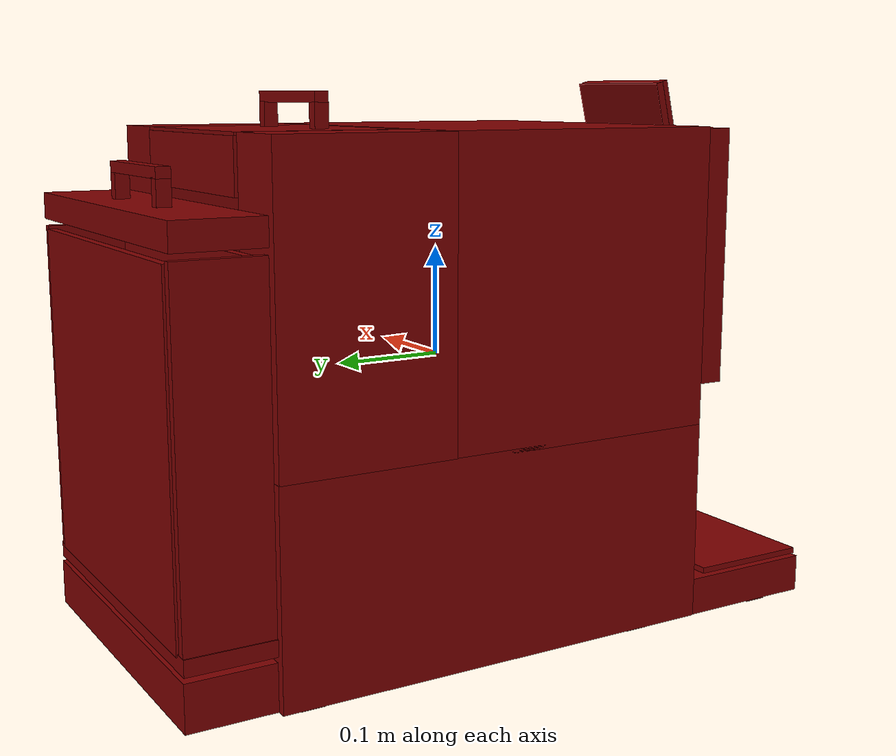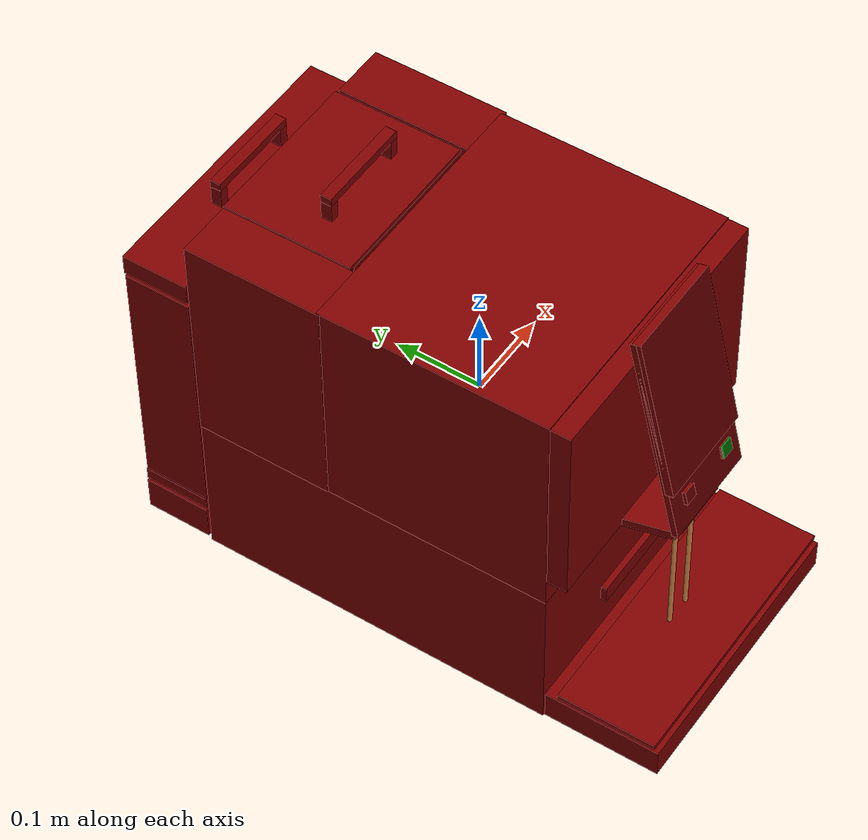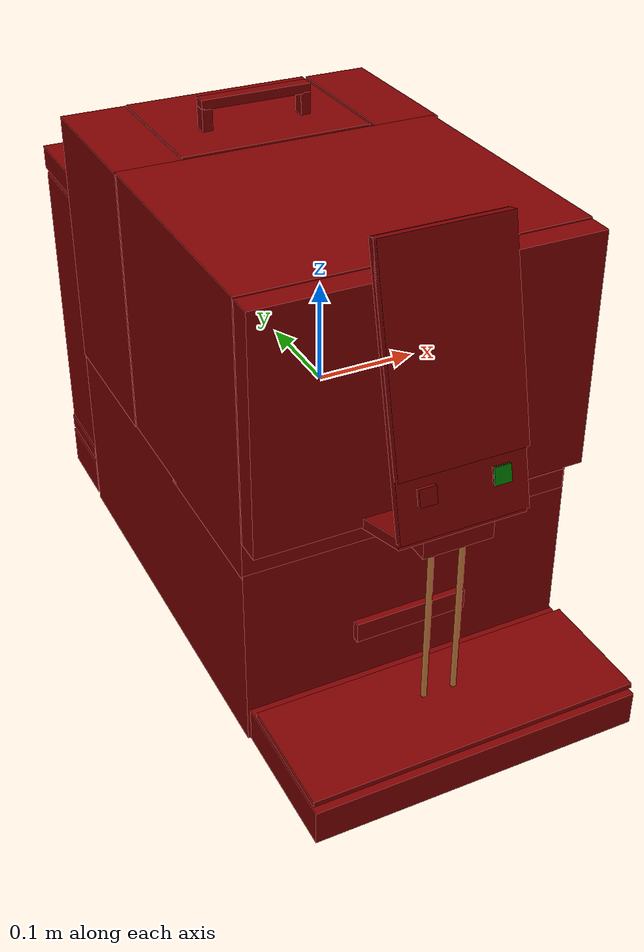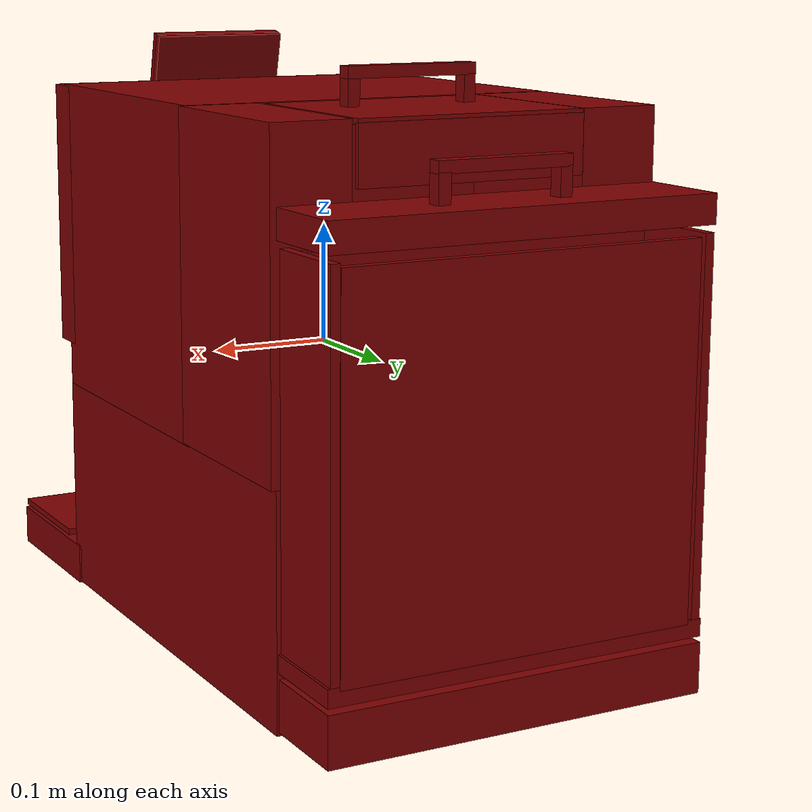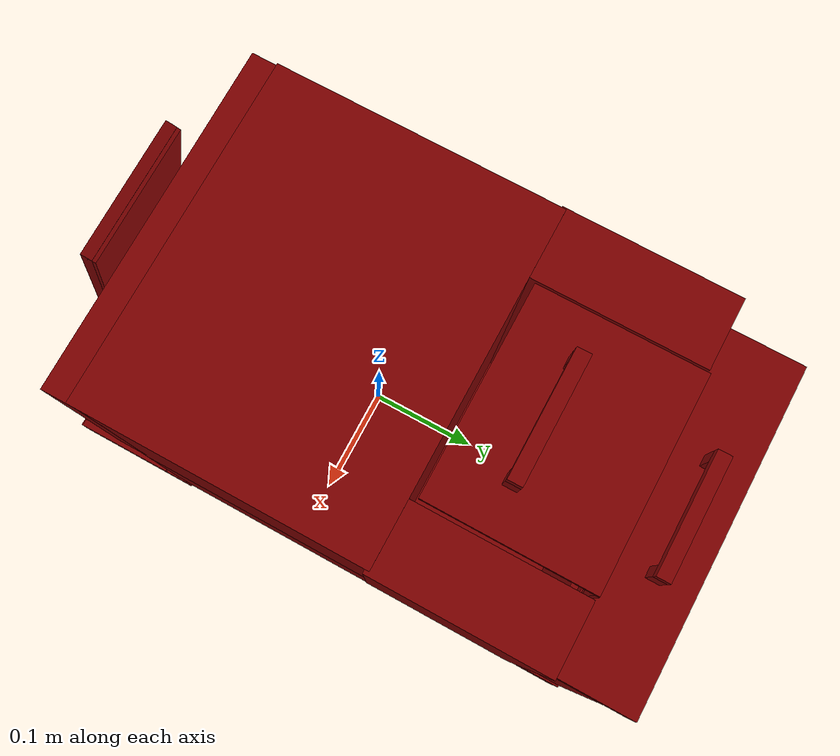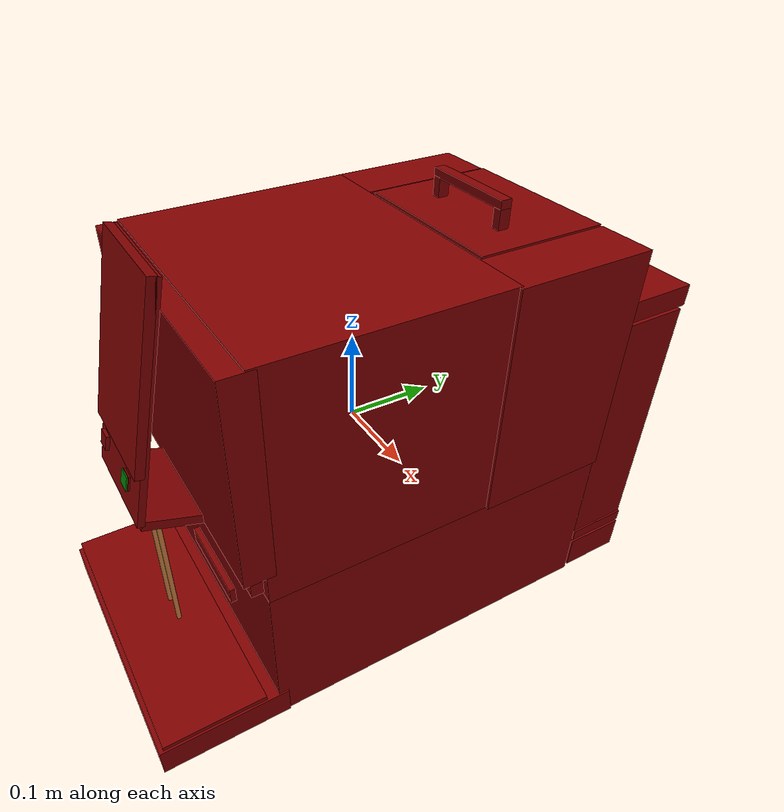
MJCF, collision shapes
<?xml version='1.0' encoding='UTF-8'?>
<mujoco model="model">
  <compiler angle="radian"/>
  <asset>
    <mesh file="visuals/Body001.obj" name="Body001_vis"/>
    <mesh file="visuals/Button001.obj" name="Button001_vis"/>
    <mesh file="visuals/Button002.obj" name="Button002_vis"/>
    <mesh file="visuals/Container001_Clear.obj" name="Container001_Clear_vis"/>
    <mesh file="visuals/Lid001.obj" name="Lid001_vis"/>
    <mesh file="visuals/Lid002.obj" name="Lid002_vis"/>
    <mesh file="visuals/Lid003.obj" name="Lid003_vis"/>
    <texture file="visuals/T_BC001.png" name="Body001_material" type="2d"/>
    <material name="Body001_material" rgba="1 1 1 1.0" texture="Body001_material" shininess="0.4472135901451111" specular="0.3103448502657381"/>
    <texture file="visuals/T_BC001.png" name="Button001_material" type="2d"/>
    <material name="Button001_material" rgba="1 1 1 1.0" texture="Button001_material" shininess="0.4472135901451111" specular="0.3103448502657381"/>
    <texture file="visuals/T_BC001.png" name="Button002_material" type="2d"/>
    <material name="Button002_material" rgba="1 1 1 1.0" texture="Button002_material" shininess="0.4472135901451111" specular="0.3103448502657381"/>
    <texture file="visuals/T_BC001.png" name="Container001_Clear_material" type="2d"/>
    <material name="Container001_Clear_material" rgba="1 1 1 0.20114943385124207" texture="Container001_Clear_material" shininess="0.4472135901451111" specular="0.3103448502657381"/>
    <texture file="visuals/T_BC001.png" name="Lid003_material" type="2d"/>
    <material name="Lid003_material" rgba="1 1 1 1.0" texture="Lid003_material" shininess="0.4472135901451111" specular="0.3103448502657381"/>
    <texture file="visuals/T_BC001.png" name="Lid001_material" type="2d"/>
    <material name="Lid001_material" rgba="1 1 1 1.0" texture="Lid001_material" shininess="0.4472135901451111" specular="0.3103448502657381"/>
    <texture file="visuals/T_BC001.png" name="Lid002_material" type="2d"/>
    <material name="Lid002_material" rgba="1 1 1 1.0" texture="Lid002_material" shininess="0.4472135901451111" specular="0.3103448502657381"/>
  </asset>
  <default>
    <default class="visual">
      <geom conaffinity="0" contype="0" group="1" type="mesh"/>
    </default>
    <default class="collision">
      <geom group="0" rgba="0.5 0 0 0.5"/>
    </default>
    <default class="spawn">
      <geom group="0" rgba="1 1 1 0.5" contype="0" conaffinity="0"/>
      <site group="0" rgba="1 1 1 0.5"/>
    </default>
    <default class="region">
      <geom group="1" conaffinity="0" contype="0" rgba="0 1 0 0"/>
    </default>
  </default>
  <worldbody>
    <body>
      <body name="object">
        <geom class="collision" type="box" pos="0.033754557371139526 -0.2671512961387634 0.04330391436815262" size="0.008060061372816563 0.008060061372816563 0.000699829775840044" quat="0.7826515436172485 0.6224600672721863 -1.3821389971906101e-16 -2.9949149626217763e-24" name="start_button" rgba="0.0 0.5 0 0.5"/>
        <site type="cylinder" rgba="0.8 0.5 0.25 1" size="0.0027536980342119932 0.08836809545755386" pos="0.015095533803105354 -0.24314254522323608 -0.11565243452787399" name="coffee_liquid_right"/>
        <site type="cylinder" rgba="0.8 0.5 0.25 1" size="0.0027536980342119932 0.08836809545755386" pos="-0.015452437102794647 -0.243136927485466 -0.11565243452787399" name="coffee_liquid_left"/>
        <site rgba="0 0 0 0" size="0.009999999776482582 0.009999999776482582" pos="-0.0006867935881018639 -0.24290379881858826 -0.19208770990371704" name="receptacle_place_site"/>
        <geom mesh="Body001_vis" type="mesh" solimp="0.998 0.998 0.001" solref="0.001 1" density="100" friction="0.95 0.3 0.1" class="visual" material="Body001_material"/>
        <geom class="collision" type="box" pos="-0.0013004596112295985 0.025184381753206253 -0.14707474410533905" size="0.1611114889383316 0.20876915752887726 0.09353115409612656" quat="1.0 0.0 0.0 0.0"/>
        <geom class="collision" type="box" pos="0.0009507137583568692 -0.24509277939796448 -0.224291130900383" size="0.1604650616645813 0.07275550812482834 0.01727115549147129" quat="1.0 0.0 0.0 0.0"/>
        <geom class="collision" type="box" pos="-0.0008559385314583778 -0.19018328189849854 0.09453745186328888" size="0.16067305207252502 0.016490131616592407 0.11428403109312057" quat="1.0 0.0 0.0 0.0"/>
        <geom class="collision" type="box" pos="0.10929493606090546 -0.1858922690153122 -0.03978230804204941" size="0.03931257873773575 0.010778128169476986 0.01006204541772604" quat="1.0 0.0 0.0 0.0"/>
        <geom class="collision" type="box" pos="-0.00016388390213251114 -0.1761995553970337 -0.1517229974269867" size="0.05573558807373047 0.014241812750697136 0.010061873123049736" quat="1.0 0.0 0.0 0.0"/>
        <geom class="collision" type="box" pos="-0.00021263858070597053 -0.2341383546590805 -0.00712016224861145" size="0.060628391802310944 0.033393725752830505 0.005183053202927113" quat="7.814456353116839e-07 1.2097139290290215e-07 0.15298236906528473 0.9882289171218872"/>
        <geom class="collision" type="box" pos="-0.00021553396072704345 -0.23795868456363678 0.1258302479982376" size="0.06091903895139694 0.12619689106941223 0.003696313826367259" quat="-4.119932555113337e-07 -6.418663929252943e-07 0.6208177208900452 -0.783954918384552"/>
        <geom class="collision" type="box" pos="5.3785042837262154e-05 -0.24348749220371246 -0.015416172333061695" size="0.0338912159204483 0.01709156483411789 0.009638278745114803" quat="1.0 0.0 0.0 0.0"/>
        <geom class="collision" type="box" pos="-9.414926171302795e-05 -0.18169912695884705 -0.03162327781319618" size="0.03677181899547577 0.005802751053124666 0.010452591814100742" quat="1.0 0.0 0.0 0.0"/>
        <geom class="collision" type="cylinder" pos="-0.01585986278951168 -0.24306541681289673 -0.026756256818771362" size="0.005605975165963173 0.002548620104789734" quat="1.0 0.0 0.0 0.0"/>
        <geom class="collision" type="cylinder" pos="0.014895429834723473 -0.24302464723587036 -0.026457564905285835" size="0.005609521642327309 0.002782014897093177" quat="1.0 0.0 0.0 0.0"/>
        <geom class="collision" type="box" pos="0.1310042142868042 0.1546313315629959 0.078236423432827" size="0.032547321170568466 0.0791948214173317 0.1319090873003006" quat="1.0 0.0 0.0 0.0"/>
        <geom class="collision" type="box" pos="-0.0013004596112295985 -0.052136532962322235 0.07679121196269989" size="0.1611114889383316 0.13138803839683533 0.13366743922233582" quat="1.0 0.0 0.0 0.0"/>
        <geom class="collision" type="box" pos="-0.1308763325214386 0.1546313315629959 0.078236423432827" size="0.03254740685224533 0.0791950449347496 0.1319095343351364" quat="1.0 0.0 0.0 0.0"/>
        <geom class="collision" type="box" pos="-0.0013004596112295985 0.22730231285095215 0.04608653485774994" size="0.16111163794994354 0.0031860563904047012 0.09584924578666687" quat="1.0 0.0 0.0 0.0"/>
        <geom class="collision" type="box" pos="-0.13053935766220093 -0.13447493314743042 -0.24615895748138428" size="0.010321017354726791 0.01090722344815731 0.005924145225435495" quat="1.0 0.0 0.0 0.0"/>
        <geom class="collision" type="box" pos="-0.13053935766220093 -0.2837553322315216 -0.24615895748138428" size="0.010321017354726791 0.010907227173447609 0.005924145225435495" quat="1.0 0.0 0.0 0.0"/>
        <geom class="collision" type="box" pos="-0.13053935766220093 0.19743475317955017 -0.24615895748138428" size="0.010321017354726791 0.010907229967415333 0.005924145225435495" quat="1.0 0.0 0.0 0.0"/>
        <geom class="collision" type="box" pos="0.12791037559509277 -0.13447493314743042 -0.24615895748138428" size="0.010321017354726791 0.010907233692705631 0.005924145225435495" quat="1.0 0.0 0.0 0.0"/>
        <geom class="collision" type="box" pos="0.12791037559509277 -0.2837553322315216 -0.24615895748138428" size="0.010321017354726791 0.010907236486673355 0.005924145225435495" quat="1.0 0.0 0.0 0.0"/>
        <geom class="collision" type="box" pos="0.12791037559509277 0.19743475317955017 -0.24615895748138428" size="0.010321017354726791 0.010907240211963654 0.005924145225435495" quat="1.0 0.0 0.0 0.0"/>
        <geom class="collision" type="box" pos="-0.0013004596112295985 0.2761686146259308 -0.2157154232263565" size="0.1611108034849167 0.03865629807114601 0.02060461789369583" quat="1.0 0.0 0.0 0.0"/>
        <geom class="collision" type="box" pos="-0.00021549036318901926 -0.2355841100215912 0.1546584516763687" size="0.06091903895139694 0.09800583124160767 0.004807164426892996" quat="-4.119932555113337e-07 -6.418663929252943e-07 0.6208177208900452 -0.783954918384552"/>
        <body name="Button001">
          <joint axis="-1.1249694381029354e-17 0.9743387699127197 -0.22508692741394043" pos="-0.035376351326704025 -0.2658103108406067 0.04280857741832733" limited="true" name="Button001_joint" range="0.0 0.001" type="slide" damping="1" frictionloss="1" armature=".01" stiffness="0.2" springref="-0.1"/>
          <geom mesh="Button001_vis" type="mesh" solimp="0.998 0.998 0.001" solref="0.001 1" density="100" friction="0.95 0.3 0.1" class="visual" material="Button001_material"/>
          <geom class="collision" type="box" pos="-0.0357784628868103 -0.2657676339149475 0.04298426955938339" size="0.008060061372816563 0.008060061372816563 0.002063905354589224" quat="0.7826515436172485 0.6224600672721863 -1.3821391295395081e-16 -9.234127288617621e-24"/>
        </body>
        <body name="Button002">
          <joint axis="-1.1249694381029354e-17 0.9743387699127197 -0.22508692741394043" pos="0.03360137715935707 -0.2658103108406067 0.04280857741832733" limited="true" name="Button002_joint" range="0.0 0.001" type="slide" damping="1" frictionloss="1" armature=".01" stiffness="0.2" springref="-0.1"/>
          <geom mesh="Button002_vis" type="mesh" solimp="0.998 0.998 0.001" solref="0.001 1" density="100" friction="0.95 0.3 0.1" class="visual" material="Button002_material"/>
          <geom class="collision" type="box" pos="0.033754557371139526 -0.264991819858551 0.04280504211783409" size="0.008060061372816563 0.008060061372816563 0.0008430741145275533" quat="0.7826515436172485 0.6224600672721863 -1.3821389971906101e-16 -2.9949149626217763e-24"/>
        </body>
        <body name="Container001_Clear">
          <joint axis="0.0 0.0 1.0" pos="-0.00032114743953570724 0.27560165524482727 -0.04986231029033661" limited="true" name="Container001_Clear_joint" range="0.0 0.1" type="slide" damping="1" frictionloss="1" armature=".01" stiffness="0.05"/>
          <geom mesh="Container001_Clear_vis" type="mesh" solimp="0.998 0.998 0.001" solref="0.001 1" density="100" friction="0.95 0.3 0.1" class="visual" material="Container001_Clear_material"/>
          <geom class="collision" type="box" pos="-0.0013004596112295985 0.2755599915981293 -0.18342097103595734" size="0.16111087799072266 0.03865629807114601 0.007220471277832985" quat="1.0 0.0 0.0 0.0"/>
          <geom class="collision" type="box" pos="0.15382120013237 0.27556002140045166 -0.027580630034208298" size="0.003839734476059675 0.03865622356534004 0.14986684918403625" quat="1.0 0.0 0.0 0.0"/>
          <geom class="collision" type="box" pos="-0.15730229020118713 0.27556002140045166 -0.027580630034208298" size="0.003839734476059675 0.03865623474121094 0.14986690878868103" quat="1.0 0.0 0.0 0.0"/>
          <geom class="collision" type="box" pos="0.00044015422463417053 0.3111792802810669 -0.02976139262318611" size="0.14986717700958252 0.003839521436020732 0.14925602078437805" quat="1.0 0.0 0.0 0.0"/>
          <geom class="collision" type="box" pos="0.0004401679616421461 0.2406676709651947 -0.02976139821112156" size="0.14986717700958252 0.003839521436020732 0.1492559313774109" quat="1.0 0.0 0.0 0.0"/>
          <body name="Lid003">
            <joint axis="0.0 0.0 1.0" pos="-0.00032111763721331954 0.27560165524482727 0.15462897717952728" limited="true" name="Lid003_joint" range="0.0 0.1" type="slide" damping="1" frictionloss="1" armature=".01" stiffness="0.05"/>
            <geom mesh="Lid003_vis" type="mesh" solimp="0.998 0.998 0.001" solref="0.001 1" density="100" friction="0.95 0.3 0.1" class="visual" material="Lid003_material"/>
            <geom class="collision" type="box" pos="-0.0013004596112295985 0.2755599915981293 0.13977396488189697" size="0.16111069917678833 0.03865629807114601 0.011780411936342716" quat="1.0 0.0 0.0 0.0"/>
            <geom class="collision" type="box" pos="0.0011533333454281092 0.27777424454689026 0.17851346731185913" size="0.056033920496702194 0.006402964703738689 0.0047754086554050446" quat="1.0 0.0 0.0 0.0"/>
            <geom class="collision" type="box" pos="-0.0497867725789547 0.27777424454689026 0.16255277395248413" size="0.005093819461762905 0.006402964703738689 0.012112844735383987" quat="1.0 0.0 0.0 0.0"/>
            <geom class="collision" type="box" pos="0.0520402230322361 0.27777424454689026 0.16255277395248413" size="0.005093819461762905 0.006402964703738689 0.012112844735383987" quat="1.0 0.0 0.0 0.0"/>
          </body>
        </body>
        <body name="Lid001">
          <joint axis="-1.0 0.0 0.0" pos="-0.0008346573449671268 0.23524436354637146 0.1597844362258911" limited="true" name="Lid001_joint" range="0.0 1.5707963267948966" type="hinge" damping="1" frictionloss="1" armature=".01" stiffness="0.05"/>
          <geom mesh="Lid001_vis" type="mesh" solimp="0.998 0.998 0.001" solref="0.001 1" density="100" friction="0.95 0.3 0.1" class="visual" material="Lid001_material"/>
          <geom class="collision" type="box" pos="-0.0007831891998648643 0.16036127507686615 0.20795075595378876" size="0.09563086926937103 0.0752367228269577 0.0022812706883996725" quat="1.0 0.0 0.0 0.0"/>
          <geom class="collision" type="box" pos="-0.0007831891998648643 0.23435699939727783 0.18367882072925568" size="0.09590782225131989 0.0017426932463422418 0.023549186065793037" quat="1.0 0.0 0.0 0.0"/>
          <geom class="collision" type="box" pos="0.050968170166015625 0.14107541739940643 0.22018098831176758" size="0.005093819461762905 0.006402964703738689 0.012112844735383987" quat="1.0 0.0 0.0 0.0"/>
          <geom class="collision" type="box" pos="-0.05085882544517517 0.14107541739940643 0.22018098831176758" size="0.005093819461762905 0.006402964703738689 0.012112844735383987" quat="1.0 0.0 0.0 0.0"/>
          <geom class="collision" type="box" pos="8.127996989060193e-05 0.14107541739940643 0.23614168167114258" size="0.056033920496702194 0.006402964703738689 0.0047754086554050446" quat="1.0 0.0 0.0 0.0"/>
        </body>
        <body name="Lid002">
          <joint axis="0.0 0.0 1.0" pos="0.0014446377754211426 -0.2545183300971985 -0.2008083313703537" limited="true" name="Lid002_joint" range="0.0 0.1" type="slide" damping="1" frictionloss="1" armature=".01" stiffness="0.05"/>
          <geom mesh="Lid002_vis" type="mesh" solimp="0.998 0.998 0.001" solref="0.001 1" density="100" friction="0.95 0.3 0.1" class="visual" material="Lid002_material"/>
          <geom class="collision" type="box" pos="0.0009788057068362832 -0.2556806802749634 -0.20065104961395264" size="0.16049550473690033 0.05756276100873947 0.0026903492398560047" quat="1.0 0.0 0.0 0.0"/>
        </body>
        <geom class="region" name="reg_main" type="box" pos="0.0 0.0 0.0" size="0.1611257791519165 0.3155016601085663 0.2513083517551422"/>
      </body>
    </body>
  </worldbody>
  <actuator>
    <motor name="Button001_joint_actuator" joint="Button001_joint" gear="0.2"/>
    <motor name="Button002_joint_actuator" joint="Button002_joint" gear="0.2"/>
    <motor name="Container001_Clear_joint_actuator" joint="Container001_Clear_joint" gear="100"/>
    <motor name="Lid001_joint_actuator" joint="Lid001_joint" gear="10"/>
    <motor name="Lid002_joint_actuator" joint="Lid002_joint" gear="10"/>
    <motor name="Lid003_joint_actuator" joint="Lid003_joint" gear="10"/>
  </actuator>
</mujoco>
